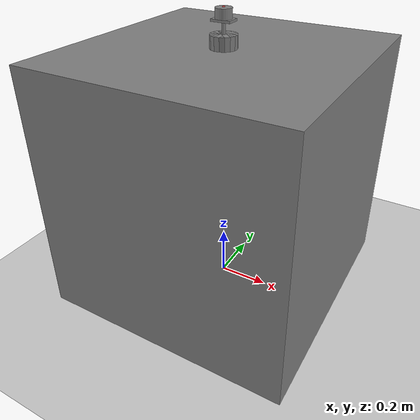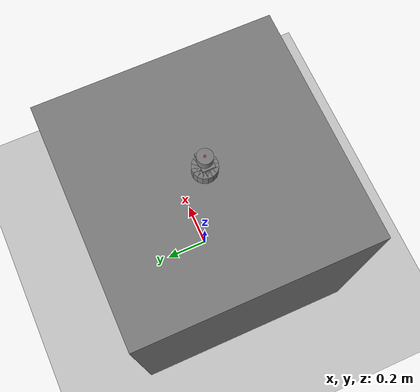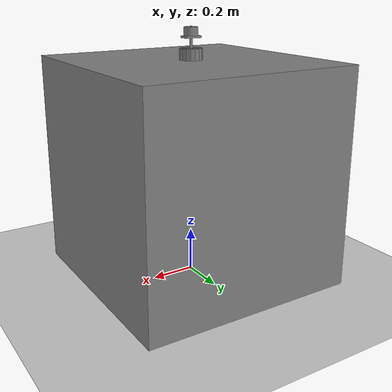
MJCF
<?xml version="1.0" ?>

<mujoco>
  <compiler angle="radian" coordinate="local" meshdir="meshes/"/>

  <option>
    <flag gravity="disable"/>
  </option>

  <default>
    <default class="visual">
      <geom contype="0" conaffinity="0"/>
    </default>
    <default class="collision">
      <geom contype="1" conaffinity="1"/>
    </default>
    <site rgba="1 0 0 .5"/>
  </default>

  <asset>
    <texture type="skybox" builtin="gradient" rgb1="1 1 1" rgb2=".6 .8 1" width="256" height="256"/>
  </asset>

  <worldbody>
    <light pos="0 0 1000" castshadow="false"/>
    <geom class="collision" type="plane" size="10 10 1" rgba=".8 .8 .8 1"/>
    <body name="experiment_table" pos="0 0 1">
      <geom type="box" size=".5 .5 .5" pos="0 0 -.5"/>
    </body>
    <body pos="0 0 1">
      <include file="hole/polyhedral_hole_inner=0-0068_outer=0-05_height=0-05_num_facets=16.xml"/>
    </body>
    <body euler="3.14159 0 0" pos="0 0 1.19">
      <inertial mass="0.001" pos="0 0 0" diaginertia="0.0000001 0.0000001 0.0000001"/>
      <freejoint/>
      <include file="peg/peg_collision.xml"/>
    </body>
  </worldbody>
</mujoco>

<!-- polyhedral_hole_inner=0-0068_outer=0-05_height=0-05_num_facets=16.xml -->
<mujoco>
	<body name="hole">
		<geom class="collision" euler="0 0 1.5707963267948966" pos="0.0284 0.0 0.025" size="0.009945618368982879 0.0216 0.025" type="box"/>
		<geom class="collision" euler="0 0 1.9634954084936207" pos="0.026238178723320543 0.01086820947916855 0.025" size="0.009945618368982879 0.0216 0.025" type="box"/>
		<geom class="collision" euler="0 0 2.356194490192345" pos="0.020081832585697953 0.02008183258569795 0.025" size="0.009945618368982879 0.0216 0.025" type="box"/>
		<geom class="collision" euler="0 0 2.748893571891069" pos="0.010868209479168552 0.026238178723320543 0.025" size="0.009945618368982879 0.0216 0.025" type="box"/>
		<geom class="collision" euler="0 0 3.141592653589793" pos="1.7389984547892415e-18 0.0284 0.025" size="0.009945618368982879 0.0216 0.025" type="box"/>
		<geom class="collision" euler="0 0 3.5342917352885173" pos="-0.010868209479168549 0.026238178723320543 0.025" size="0.009945618368982879 0.0216 0.025" type="box"/>
		<geom class="collision" euler="0 0 3.9269908169872414" pos="-0.02008183258569795 0.020081832585697953 0.025" size="0.009945618368982879 0.0216 0.025" type="box"/>
		<geom class="collision" euler="0 0 4.319689898685965" pos="-0.026238178723320543 0.010868209479168552 0.025" size="0.009945618368982879 0.0216 0.025" type="box"/>
		<geom class="collision" euler="0 0 4.71238898038469" pos="-0.0284 3.477996909578483e-18 0.025" size="0.009945618368982879 0.0216 0.025" type="box"/>
		<geom class="collision" euler="0 0 5.105088062083414" pos="-0.026238178723320543 -0.010868209479168547 0.025" size="0.009945618368982879 0.0216 0.025" type="box"/>
		<geom class="collision" euler="0 0 5.497787143782138" pos="-0.020081832585697956 -0.02008183258569795 0.025" size="0.009945618368982879 0.0216 0.025" type="box"/>
		<geom class="collision" euler="0 0 5.890486225480862" pos="-0.010868209479168566 -0.02623817872332054 0.025" size="0.009945618368982879 0.0216 0.025" type="box"/>
		<geom class="collision" euler="0 0 6.283185307179586" pos="-5.216995364367725e-18 -0.0284 0.025" size="0.009945618368982879 0.0216 0.025" type="box"/>
		<geom class="collision" euler="0 0 6.675884388878311" pos="0.010868209479168557 -0.026238178723320543 0.025" size="0.009945618368982879 0.0216 0.025" type="box"/>
		<geom class="collision" euler="0 0 7.0685834705770345" pos="0.02008183258569795 -0.020081832585697956 0.025" size="0.009945618368982879 0.0216 0.025" type="box"/>
		<geom class="collision" euler="0 0 7.461282552275758" pos="0.02623817872332054 -0.010868209479168568 0.025" size="0.009945618368982879 0.0216 0.025" type="box"/>
		<geom class="collision" pos="0 0 -0.025" size="0.05 0.025" type="cylinder"/>
		<site euler="-3.141592653589793 0 0" name="hole_base" pos="0 0 0" size="0.005 0.005 0.005"/>
		<site euler="-3.141592653589793 0 0" name="hole_top" pos="0 0 0.05" size="0.005 0.005 0.005"/>
	</body>
</mujoco>

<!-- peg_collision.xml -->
<mujoco>
  <body name="peg" euler="0 0 0" pos="0 0 0.05">
    <inertial pos="0 0 0" mass="1"/>
    <geom class="visual" type="cylinder" pos="0 0 0.01862" size="0.031 0.01862"/>
    <geom class="collision" type="cylinder" pos="0 0 0.01862" size="0.031 0.01862"/>

    <geom class="visual" type="box" pos="0 0 0.042" size="0.038125 0.02541 0.00476"/>
    <geom class="collision" type="box" pos="0 0 0.042" size="0.038125 0.02541 0.00476"/>

    <geom class="visual" type="cylinder" pos="0 0 0.07789" size="0.006725 0.03113"/>
    <geom name="peg_tip_geom" class="collision" type="cylinder" pos="0 0 0.07789" size="0.006725 0.03113" friction="0.3 0.005 0.0001"/>

    <site name="peg_tip" pos="0 0 0.10902" euler="0 0 0" size="0.005, 0.005, 0.005"/>
    <site name="peg_ft_site" pos="0 0 0" euler="0 0 0" size="0.005, 0.005, 0.005"/>
  </body>
</mujoco>
